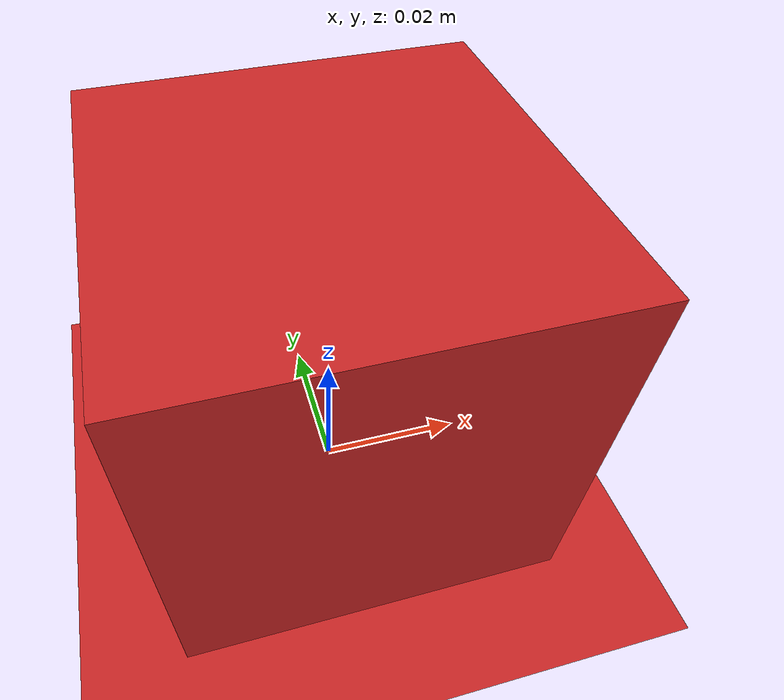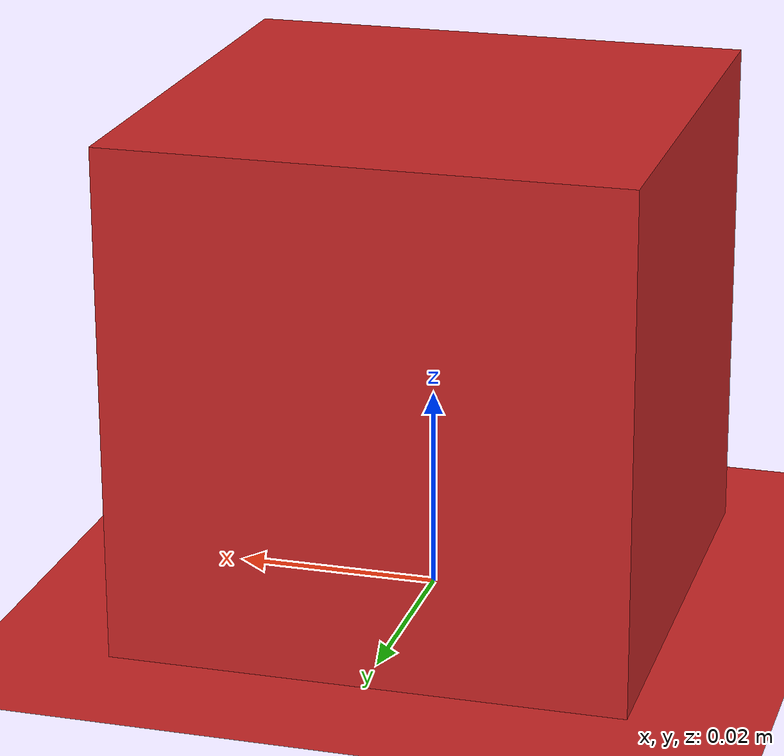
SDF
<sdf version="1.6">
 <world name="default">
  <light name="sun" type="directional">
   <pose>0 0 10 0 -0 0</pose>
   <diffuse>0.8 0.8 0.8 1</diffuse>
   <specular>0.2 0.2 0.2 1</specular>
   <attenuation>
    <range>1000</range>
    <constant>0.9</constant>
    <linear>0.01</linear>
    <quadratic>0.001</quadratic>
   </attenuation>
   <direction>-0.5 0.1 -0.9</direction>
  </light>
  <model name="ground_plane">
   <static>1</static>
   <link name="link">
    <collision name="collision">
     <geometry><plane><normal>0 0 1</normal><size>100 100</size></plane></geometry>
     <surface>
      <contact><collide_bitmask>65535</collide_bitmask></contact>
      <friction><ode><mu>100</mu><mu2>50</mu2></ode></friction>
     </surface>
    </collision>
    <visual name="visual">
     <cast_shadows>0</cast_shadows>
     <geometry><plane><normal>0 0 1</normal><size>100 100</size></plane></geometry>
     <material>
      <script><uri>file://media/materials/scripts/gazebo.material</uri><name>Gazebo/Red</name></script>
     </material>
    </visual>
   </link>
  </model>
  <gravity>0 0 -9.8</gravity>
  <magnetic_field>6e-06 2.3e-05 -4.2e-05</magnetic_field>
  <atmosphere type="adiabatic"/>
  <physics name="default_physics" default="0" type="ode">
   <max_step_size>0.001</max_step_size>
   <real_time_factor>1</real_time_factor>
   <real_time_update_rate>1000</real_time_update_rate>
  </physics>
  <scene><ambient>0.4 0.4 0.4 1</ambient><background>0.7 0.7 0.7 1</background><shadows>1</shadows></scene>
  <spherical_coordinates>
   <surface_model>EARTH_WGS84</surface_model>
   <latitude_deg>0</latitude_deg>
   <longitude_deg>0</longitude_deg>
   <elevation>0</elevation>
   <heading_deg>0</heading_deg>
  </spherical_coordinates>
  <model name="unit_box">
   <pose>8e-06 -3e-06 0.025011 0.000131 0.000302 0.00239</pose>
   <link name="link">
    <inertial>
     <mass>1</mass>
     <inertia><ixx>0</ixx><ixy>0</ixy><ixz>0</ixz><iyy>0</iyy><iyz>0</iyz><izz>0</izz></inertia>
    </inertial>
    <collision name="collision">
     <geometry><box><size>0.05 0.05 0.05</size></box></geometry>
     <surface>
      <friction><ode><mu>1000</mu><mu2>1000</mu2></ode></friction>
      <contact>
       <elastic_modulus>0.0001</elastic_modulus>
       <ode><kp>1.0</kp><kd>1.0</kd><min_depth>0.1</min_depth><max_vel>0.0000000000000000000001</max_vel></ode>
      </contact>
     </surface>
    </collision>
    <visual name="visual">
     <geometry><box><size>0.05 0.05 0.05</size></box></geometry>
     <material>
      <script><name>Gazebo/Red</name><uri>file://media/materials/scripts/gazebo.material</uri></script>
     </material>
    </visual>
   </link>
  </model>
 </world>
</sdf>
